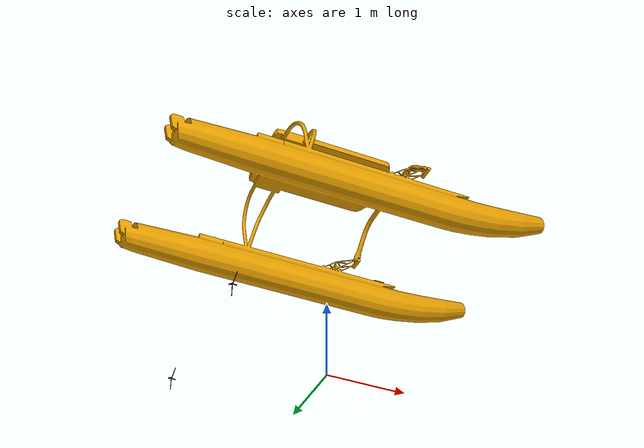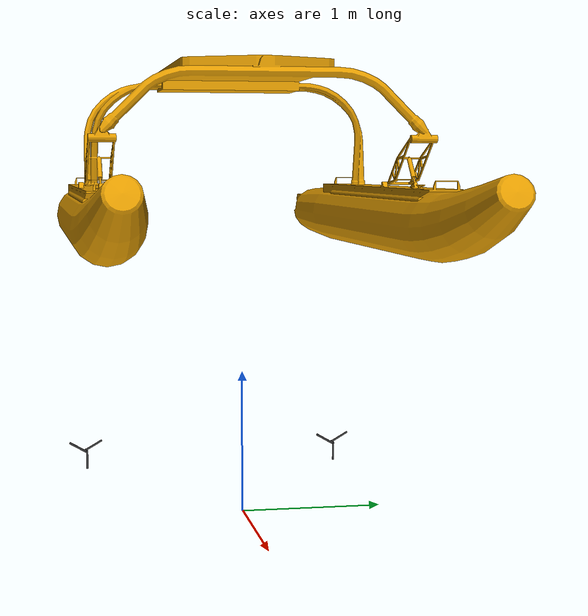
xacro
<?xml version="1.0"?>
<robot xmlns:xacro="http://ros.org/wiki/xacro" name="wam-v">
  <xacro:include filename="properties.urdf.xacro"/>

  <link name="base_link">
    <visual>
      <geometry>
        <mesh filename="package://wamv_description/mesh/WAM-V-Base.dae"/>
      </geometry>
    </visual>

    <!-- Left float -->
    <collision name="left_float">
      <origin xyz="-0.4 1.03 0.2" rpy="0 1.57 0" />
      <geometry>
        <cylinder length="4" radius="0.2" />
      </geometry>
    </collision>
    <collision name="left_mid_float">
      <origin xyz="1.85 1.03 0.3" rpy="0 1.38 0" />
      <geometry>
        <cylinder length="0.5" radius="0.17" />
      </geometry>
    </collision>
    <collision name="left_front_float">
      <origin xyz="2.3 1.03 0.4" rpy="0 1.3 0" />
      <geometry>
        <cylinder length="0.45" radius="0.12" />
      </geometry>
    </collision>

    <!-- Left engine upper -->
    <collision name="left_engine_vertical_axis">
      <origin xyz="-2.55 1.03 0.09" rpy="0 0 0" />
      <geometry>
        <box size="0.2 0.15 0.83" />
      </geometry>
    </collision>
    <collision name="left_engine_rear_end">
      <origin xyz="-2.71 1.03 0.45" rpy="0 0 0" />
      <geometry>
        <box size="0.12 0.15 0.12" />
      </geometry>
    </collision>
    <collision name="left_propeller">
      <origin xyz="-2.73 1.03 -0.2" rpy="0 1.57 0" />
      <geometry>
        <cylinder length="0.18" radius="0.24" />
      </geometry>
    </collision>

    <!-- Right float -->
    <collision name="left_float">
      <origin xyz="-0.4 -1.03 0.2" rpy="0 1.57 0" />
      <geometry>
        <cylinder length="4" radius="0.2" />
      </geometry>
    </collision>
    <collision name="left_mid_float">
      <origin xyz="1.85 -1.03 0.3" rpy="0 1.38 0" />
      <geometry>
        <cylinder length="0.5" radius="0.17" />
      </geometry>
    </collision>
    <collision name="left_front_float">
      <origin xyz="2.3 -1.03 0.4" rpy="0 1.3 0" />
      <geometry>
        <cylinder length="0.45" radius="0.12" />
      </geometry>
    </collision>

    <!-- Right engine upper -->
    <collision name="left_engine_vertical_axis">
      <origin xyz="-2.55 -1.03 0.09" rpy="0 0 0" />
      <geometry>
        <box size="0.2 0.15 0.83" />
      </geometry>
    </collision>
    <collision name="left_engine_rear_end">
      <origin xyz="-2.71 -1.03 0.45" rpy="0 0 0" />
      <geometry>
        <box size="0.12 0.15 0.12" />
      </geometry>
    </collision>
    <collision name="left_propeller">
      <origin xyz="-2.73 -1.03 -0.2" rpy="0 1.57 0" />
      <geometry>
        <cylinder length="0.18" radius="0.24" />
      </geometry>
    </collision>

    <!-- Base -->
    <collision name="top_base">
      <origin xyz="0 -0 1.25" rpy="0 0 0" />
      <geometry>
        <box size="1.85 1 0.1" />
      </geometry>
    </collision>

    <!-- Front left beam -->
    <collision name="front_left_beam_lower">
      <origin xyz="0.9 0.85 1" rpy="0.78 0 0" />
      <geometry>
        <cylinder length="0.5" radius="0.04" />
      </geometry>
    </collision>

    <collision name="front_left_beam_upper">
      <origin xyz="0.9 0.6 1.18" rpy="1.35 0 0" />
      <geometry>
        <cylinder length="0.2" radius="0.04" />
      </geometry>
    </collision>

    <!-- Front right beam -->
    <collision name="front_right_beam_lower">
      <origin xyz="0.9 -0.85 1" rpy="-0.78 0 0" />
      <geometry>
        <cylinder length="0.5" radius="0.04" />
      </geometry>
    </collision>

    <collision name="front_right_beam_upper">
      <origin xyz="0.9 -0.6 1.18" rpy="-1.35 0 0" />
      <geometry>
        <cylinder length="0.2" radius="0.04" />
      </geometry>
    </collision>

    <!-- Mid left beam -->
    <collision name="mid_left_beam_lower">
      <origin xyz="-0.65 0.99 0.7" rpy="0.1 0.25 0" />
      <geometry>
        <cylinder length="0.45" radius="0.03" />
      </geometry>
    </collision>

    <collision name="mid_left_beam_medium">
      <origin xyz="-0.57 0.87 1.05" rpy="0.75 0.25 0" />
      <geometry>
        <cylinder length="0.32" radius="0.03" />
      </geometry>
    </collision>

    <collision name="mid_left_beam_upper">
      <origin xyz="-0.55 0.65 1.17" rpy="1.35 0.25 0" />
      <geometry>
        <cylinder length="0.3" radius="0.03" />
      </geometry>
    </collision>

    <!-- Mid right beam -->
    <collision name="mid_right_beam_lower">
      <origin xyz="-0.65 -0.99 0.7" rpy="-0.1 0.25 0" />
      <geometry>
        <cylinder length="0.45" radius="0.03" />
      </geometry>
    </collision>

    <collision name="mid_right_beam_medium">
      <origin xyz="-0.57 -0.87 1.05" rpy="-0.75 0.25 0" />
      <geometry>
        <cylinder length="0.32" radius="0.03" />
      </geometry>
    </collision>

    <collision name="mid_right_beam_upper">
      <origin xyz="-0.55 -0.65 1.17" rpy="-1.35 0.25 0" />
      <geometry>
        <cylinder length="0.3" radius="0.03" />
      </geometry>
    </collision>

    <!-- Rear left beam -->
    <collision name="rear_left_beam_lower">
      <origin xyz="-0.74 1.03 0.7" rpy="0 -0.15 0" />
      <geometry>
        <cylinder length="0.45" radius="0.03" />
      </geometry>
    </collision>

    <collision name="rear_left_beam_medium">
      <origin xyz="-0.79 0.91 1.05" rpy="0.75 -0.15 0" />
      <geometry>
        <cylinder length="0.32" radius="0.03" />
      </geometry>
    </collision>

    <collision name="rear_left_beam_upper">
      <origin xyz="-0.81 0.67 1.18" rpy="1.45 -0.15 0" />
      <geometry>
        <cylinder length="0.3" radius="0.03" />
      </geometry>
    </collision>

    <!-- Rear right beam -->
    <collision name="rear_right_beam_lower">
      <origin xyz="-0.74 -1.03 0.7" rpy="0 -0.15 0" />
      <geometry>
        <cylinder length="0.45" radius="0.03" />
      </geometry>
    </collision>

    <collision name="rear_right_beam_medium">
      <origin xyz="-0.79 -0.91 1.05" rpy="-0.75 -0.15 0" />
      <geometry>
        <cylinder length="0.32" radius="0.03" />
      </geometry>
    </collision>

    <collision name="rear_right_beam_upper">
      <origin xyz="-0.81 -0.67 1.18" rpy="-1.45 -0.15 0" />
      <geometry>
        <cylinder length="0.3" radius="0.03" />
      </geometry>
    </collision>

    <!-- Left joint -->
    <collision name="left_joint">
      <origin xyz="0.58 1.03 0.6" rpy="0 -0.6 0" />
      <geometry>
        <box size="0.65 0.2 0.1" />
      </geometry>
    </collision>

    <!-- Right joint -->
    <collision name="right_joint">
      <origin xyz="0.58 -1.03 0.6" rpy="0 -0.6 0" />
      <geometry>
        <box size="0.65 0.2 0.1" />
      </geometry>
    </collision>

    <inertial>
      <mass value="247.07"/>
      <inertia ixx="200" ixy="0.03" ixz="3.09" iyy="500" iyz="-0.05" izz="165.39"/>
    </inertial>
  </link>

  <joint name="base_link_joint" type="fixed">
    <origin xyz="0 0 1.84"/>
    <parent link="base_footprint"/>
    <child link="base_link"/>
  </joint>

  <link name="base_footprint"/>

  <link name="front_camera_link"/>
  <joint name="front_camera_joint" type="fixed">
    <origin xyz="1.2 0 0"/>
    <parent link="base_link"/>
    <child link="front_camera_link"/>
  </joint>
  <link name="left_camera_link"/>
  <joint name="left_camera_joint" type="fixed">
    <origin xyz="0 0.5 0" rpy="0 0 ${pi/2}"/>
    <parent link="base_link"/>
    <child link="left_camera_link"/>
  </joint>
  <link name="right_camera_link"/>
  <joint name="right_camera_joint" type="fixed">
    <origin xyz="0 -0.5 0" rpy="0 0 ${-pi/2}"/>
    <parent link="base_link"/>
    <child link="right_camera_link"/>
  </joint>
  <link name="rear_camera_link"/>
  <joint name="rear_camera_joint" type="fixed">
    <origin xyz="-0.5 0 0" rpy="0 0 ${pi}"/>
    <parent link="base_link"/>
    <child link="rear_camera_link"/>
  </joint>

  <link name="scan"/>
  <joint name="scan_joint" type="fixed">
    <origin xyz="1.5 0 -1" rpy="0 0 0"/>
    <parent link="base_link"/>
    <child link="scan"/>
  </joint>

  <link name="right_motor">
    <visual>
     <geometry>
       <mesh filename="package://wamv_description/mesh/PROPELLER.dae"/>
     </geometry>
    </visual>
    <collision name="right_motor_collision">
      <geometry>
        <mesh filename="package://wamv_description/mesh/PROPELLER.dae"/>
      </geometry>
    </collision>
    <inertial>
      <mass value="0.01"/>
      <inertia ixx="0.00086" ixy="0.00" ixz="0.00" iyy="0.00086" iyz="0.00" izz="0.0017"/>
    </inertial>
  </link>

  <joint name="right_motor_joint" type="continuous">
    <origin xyz="${motor_position_x} -${motor_position_y} ${motor_position_z}"/>
    <parent link="base_link"/>
    <child link="right_motor"/>
    <limit effort="0.5293" velocity="100${pi}" />
  </joint>

  <link name="left_motor">
    <visual>
     <geometry>
       <mesh filename="package://wamv_description/mesh/PROPELLER.dae"/>
     </geometry>
    </visual>
    <collision name="left_motor_collision">
      <geometry>
        <mesh filename="package://wamv_description/mesh/PROPELLER.dae"/>
      </geometry>
    </collision>
    <inertial>
      <mass value="0.01"/>
      <inertia ixx="0.00086" ixy="0.00" ixz="0.00" iyy="0.00086" iyz="0.00" izz="0.0017"/>
    </inertial>
  </link>

  <joint name="left_motor_joint" type="continuous">
    <origin xyz="${motor_position_x} ${motor_position_y} ${motor_position_z}"/>
    <parent link="base_link"/>
    <child link="left_motor"/>
    <limit effort="0.5293" velocity="100${pi}" />
  </joint>

  <link name="gps"/>

  <joint name="gps_joint" type="fixed">
    <origin xyz="0.8 0 0"/>
    <parent link="base_link"/>
    <child link="gps"/>
  </joint>

  <transmission name="right_motor_trans">
    <type>transmission_interface/SimpleTransmission</type>
    <joint name="right_motor_joint">
      <hardwareInterface>VelocityJointInterface</hardwareInterface>
    </joint>
    <actuator name="right_motor_actuator">
      <hardwareInterface>VelocityJointInterface</hardwareInterface>
      <mechanicalReduction>30</mechanicalReduction>
    </actuator>
  </transmission>

  <transmission name="left_motor_trans">
    <type>transmission_interface/SimpleTransmission</type>
    <joint name="left_motor_joint">
      <hardwareInterface>VelocityJointInterface</hardwareInterface>
    </joint>
    <actuator name="left_motor_actuator">
      <hardwareInterface>VelocityJointInterface</hardwareInterface>
      <mechanicalReduction>30</mechanicalReduction>
    </actuator>
  </transmission>

</robot>

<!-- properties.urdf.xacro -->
<robot xmlns:xacro="http://ros.org/wiki/xacro" name="wam-v">
  <xacro:property name="hal_position_x" value="0.5" />
  <xacro:property name="hal_position_y" value="1.05" />
  <xacro:property name="hal_position_z" value="0.5" />
  <xacro:property name="hal_size_x" value="4.0" />
  <xacro:property name="hal_size_y" value="0.5" />
  <xacro:property name="hal_size_z" value="0.5" />
  <xacro:property name="motor_position_x" value="-1.5" />
  <xacro:property name="motor_position_y" value="1.027" />
  <xacro:property name="motor_position_z" value="-1.705" />

  <xacro:property name="motor_size_x" value="0.1" />
  <xacro:property name="motor_size_y" value="0.2" />
  <xacro:property name="motor_size_z" value="0.2" />

  <xacro:property name="rotational_speed_effort" value="1" />
  <xacro:property name="joint_state_topic" value="/wam_v/joint_states" />

  <xacro:property name="start_point_latitude" value="135.524910" />
  <xacro:property name="start_point_longitude" value="34.822634" />
  <xacro:property name="start_point_heading" value="0" />

  <xacro:property name="robot" value="wam_v" />
</robot>
